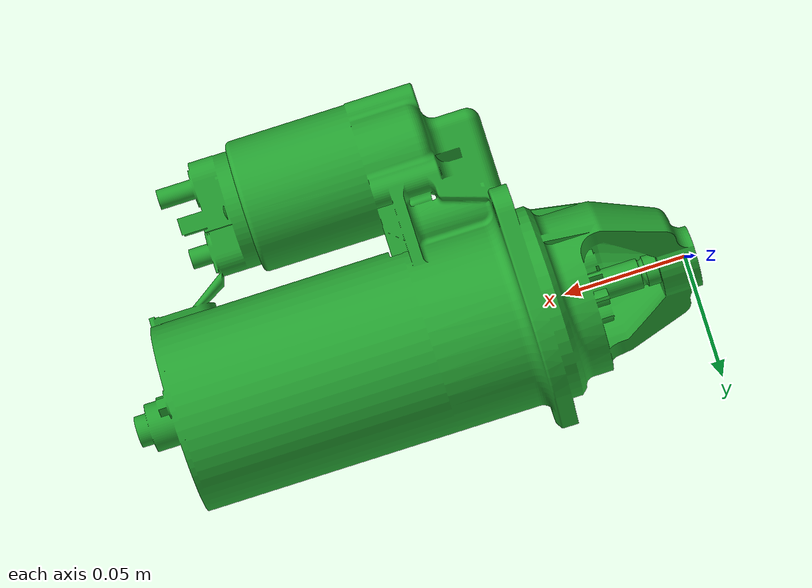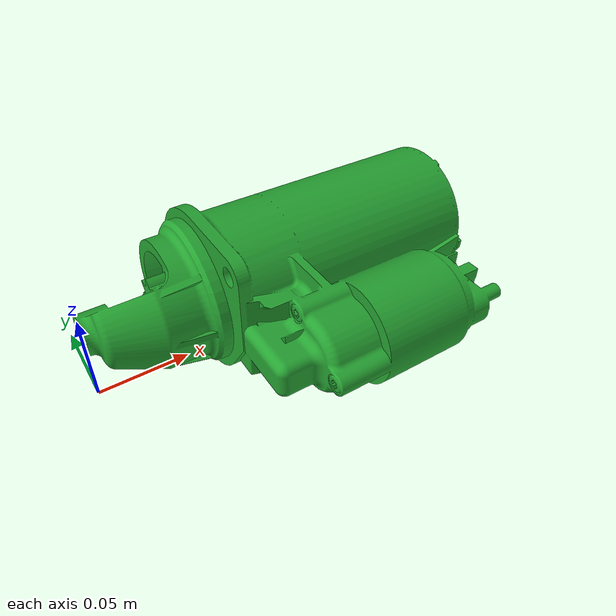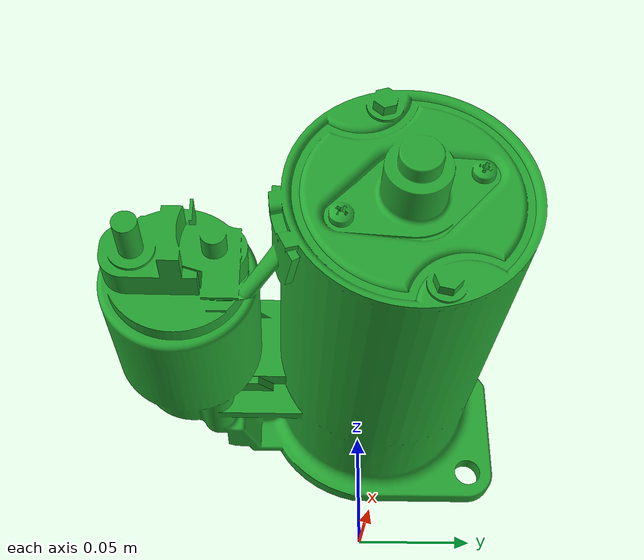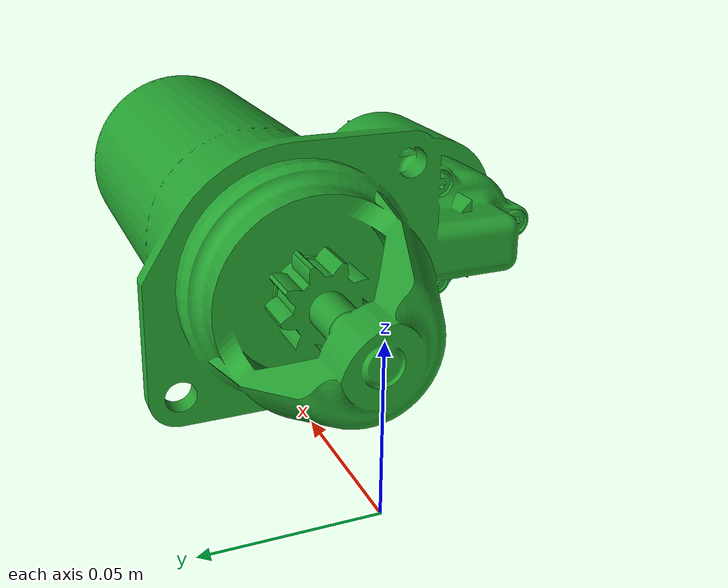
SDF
<?xml version="1.0" ?>
<sdf version="1.5">
	<model name="starter_motor">
		<static>0</static>
		<pose>0 0 0.043 0 0 0</pose>
		<link name="link">
			<inertial>
				<pose>0.113060 -0.010316 -0.000213 0 0 0</pose>
				<mass>1.0</mass>
			</inertial>
			<collision name="collision">
				<geometry>
					<mesh>
						<uri>model://starter_motor/meshes/starter_motor.stl</uri>
					</mesh>
				</geometry>
			</collision>
			<visual name="visual">
				<transparency>0</transparency>
				<geometry>
					<mesh>
						<uri>model://starter_motor/meshes/starter_motor.stl</uri>
					</mesh>
				</geometry>
				<material>
					<script>
						<name>SensorPlacementOptimization/Green</name>
						<uri>file://materials/sensor_placement_optimization.material</uri>
					</script>
				</material>
			</visual>
		</link>
	</model>
</sdf>
